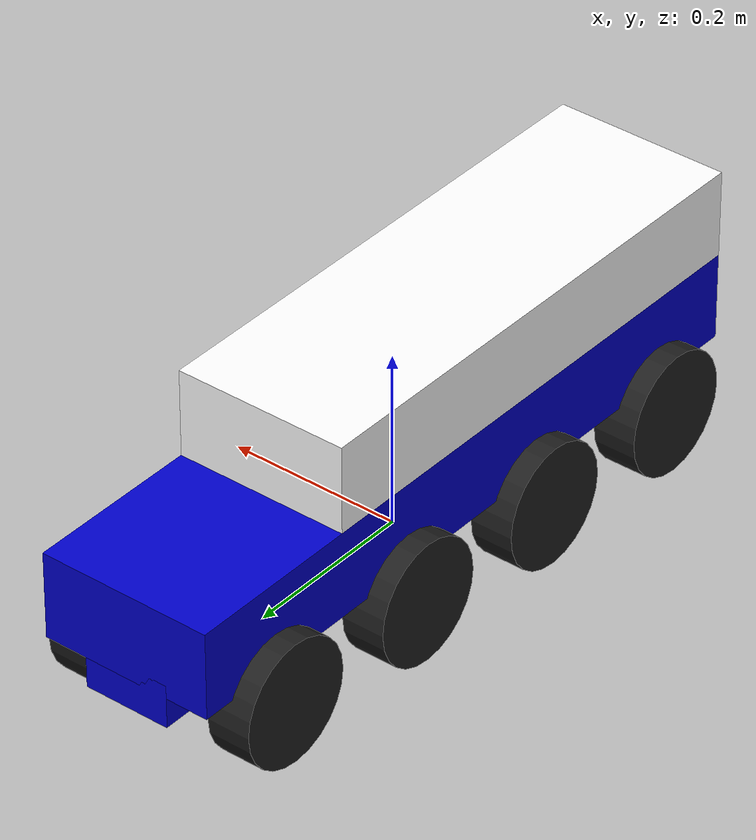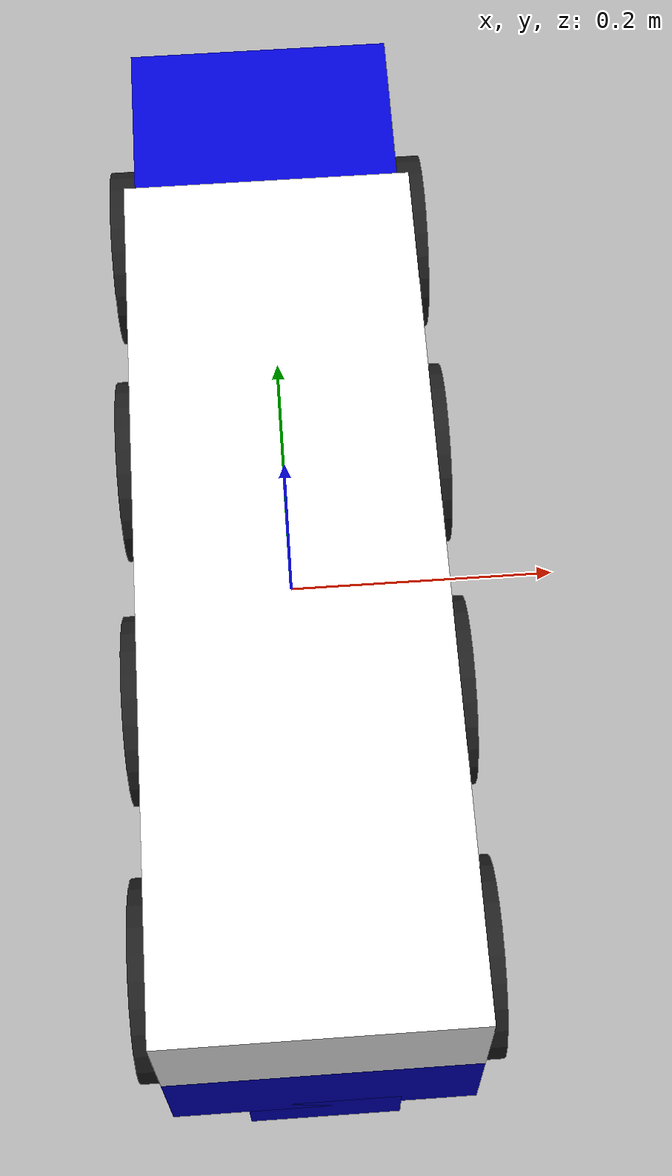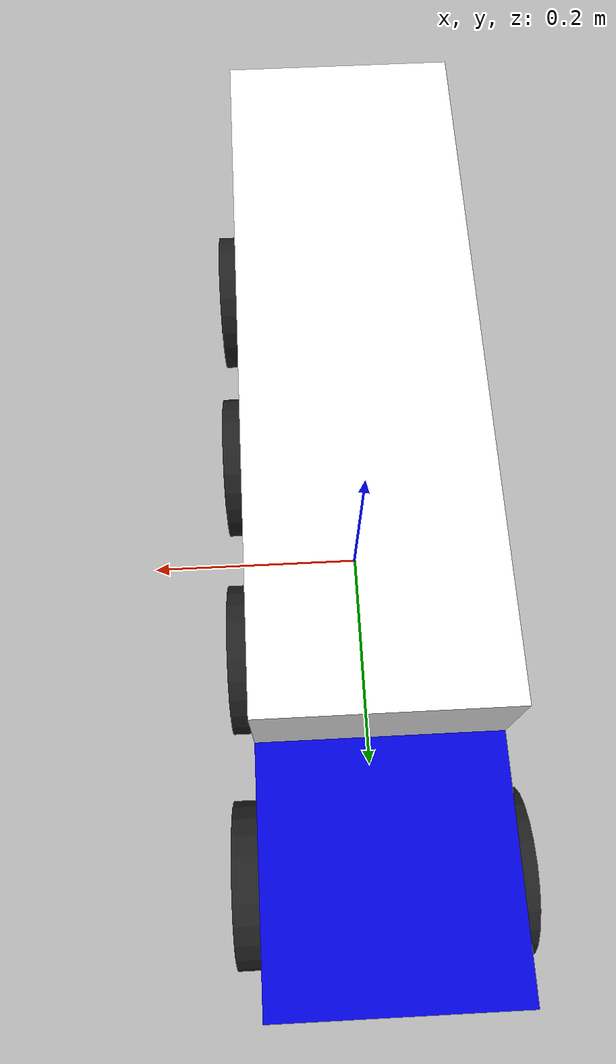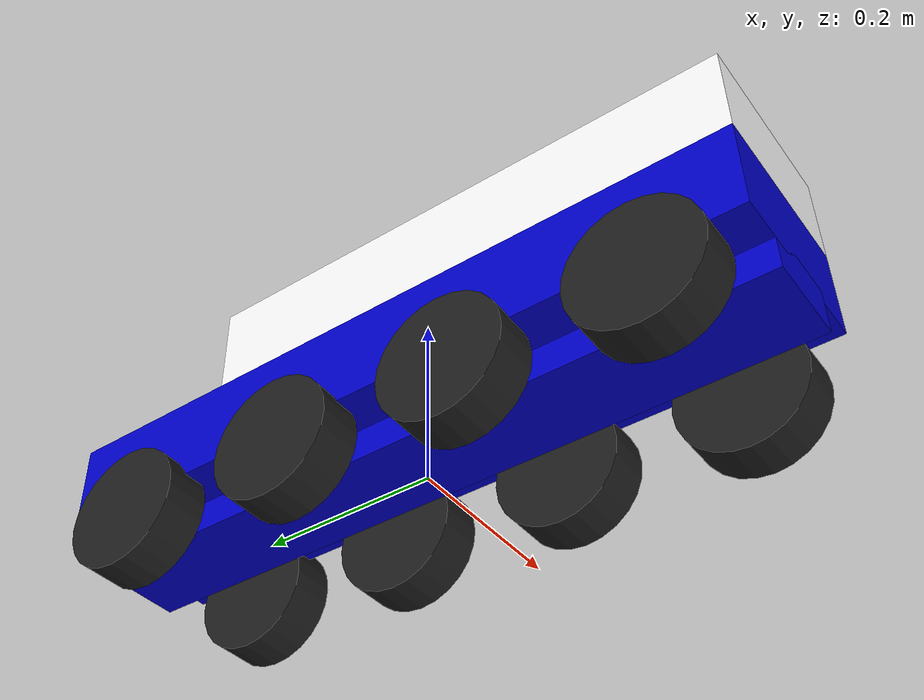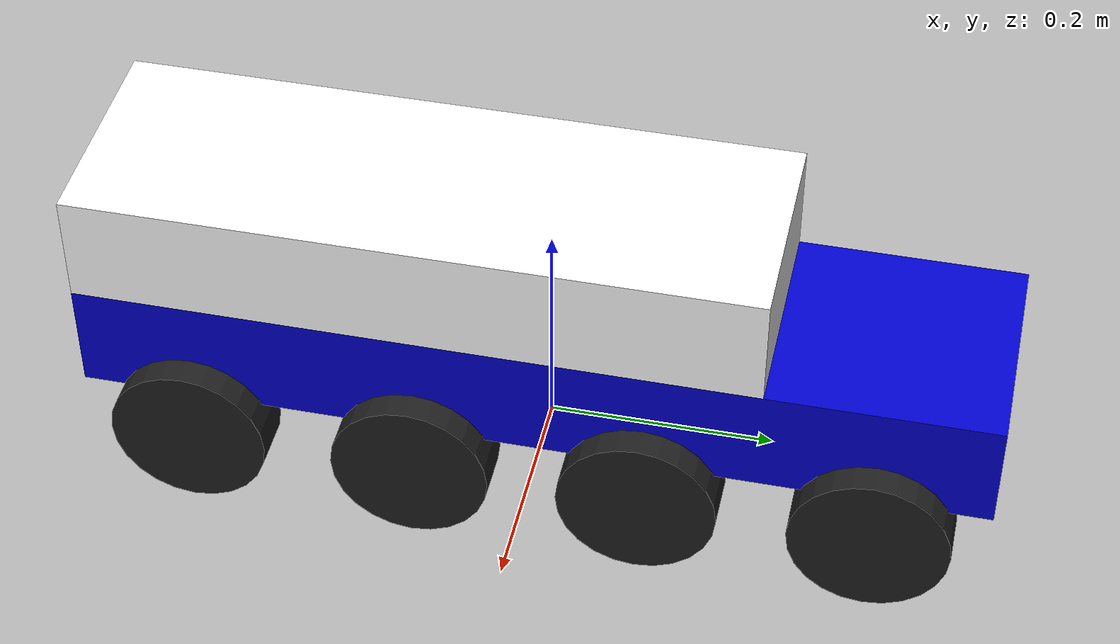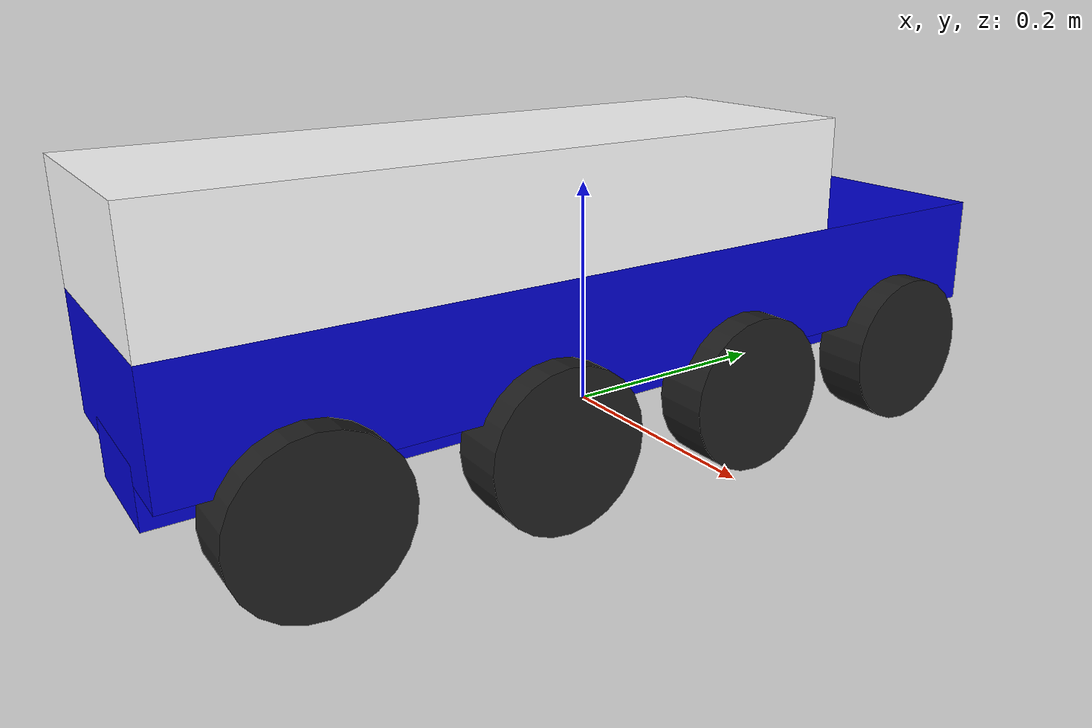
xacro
<?xml version="1.0"?>
<robot name="8x8" xmlns:xacro="http://www.ros.org/wiki/xacro">

<xacro:property name="wheelRadius" value="0.07"/>
<xacro:property name="wheelLength" value="0.05"/>
<xacro:property name="leftWheel" value="left_wheel"/>
<xacro:property name="rightWheel" value="right_wheel"/>

<xacro:macro name="wheel" params="side num reflect">
  <link name="${side}_${num}">
    <visual>
      <geometry>
        <cylinder length="${wheelLength}" radius="${wheelRadius}"/>
      </geometry>
      <material name="Black"/>
    </visual>
    <collision>
      <geometry>
         <cylinder length="${wheelLength}" radius="${wheelRadius}"/>
      </geometry>
    </collision>
    <inertial>
      <mass value = "1" />
      <inertia ixx="0.005391667" ixy="0.0" ixz="0.0" iyy="0.005391667" iyz="0.0" izz="0.245"/>
    </inertial>
</link>

  <joint name="${side}_${num}_joint" type="continuous">
    <axis xyz="0 0 1" />
    <limit effort="1000.0" lower="-0.5" upper="0.5" velocity="0.5"/>
    <parent link="base_link"/>
    <child link="${side}_${num}"/>
    <origin rpy="0 ${pi/2} 0" xyz="${0.1 * reflect} ${0.3 - (0.2 * num)} 0.02"/>
  </joint>
</xacro:macro>

<xacro:macro name="transmissions" params="num side">

    <transmission name="${side}_${num}_trans">
      <type>transmission_interface/SimpleTransmission</type>
      <actuator name="${side}_${num}_motor">
        <mechanicalReduction>1</mechanicalReduction>
      </actuator>
      <joint name="${side}_${num}_joint">
        <hardwareInterface>VelocityJointInterface</hardwareInterface>
      </joint>
    </transmission>

    <gazebo reference="${side}_${num}">
      <mu1 value="200.0"/>
      <mu2 value="100.0"/>
      <kp value="10000000.0" />
      <kd value="1.0" />
      <material>Gazebo/Grey</material>
    </gazebo>
</xacro:macro>

  <material name="blue">
    <color rgba="0 0 0.8 1"/>
  </material>

  <material name="white">
    <color rgba="1 1 1 1"/>
  </material>

 <material name="black">
    <color rgba="0 0 0 1"/>
  </material>

  <link name="base_link">
    <visual>
      <geometry>
        <box size="0.2 0.8 0.1"/>
      </geometry>
      <origin rpy="0 0 0" xyz="0 0 0.1"/>
      <material name = "blue"/>
    </visual>
    <collision>
      <geometry>
        <box size="0.2 0.8 0.1"/>
      </geometry>
    </collision>
    <inertial>
      <mass value = "10" />
      <inertia ixx="0.5667" ixy="0.0" ixz="0.0" iyy="0.5667" iyz="0.0" izz="0.0667"/>
    </inertial>
  </link>

<link name="topBox">
 <visual>
  <geometry>
    <box size="0.2 0.6 0.1"/>
  </geometry>
    <origin rpy="0 0 0" xyz="0 -0.3 0"/>
      <material name="white"/>
 </visual>
</link>

 <joint name="topBox_joint" type="fixed">
 <parent link="base_link"/>
 <child link="topBox"/>
 <origin xyz="0 0.2 0.2"/>
  </joint>

<link name="chassis">
 <visual>
  <geometry>
    <box size="0.1 0.8 0.05"/>
  </geometry>
    <origin rpy="0 0 0" xyz="0 0 0.04"/>
      <material name="blue"/>
 </visual>
</link>

 <joint name="chassis_joint" type="fixed">
 <parent link="base_link"/>
 <child link="chassis"/>
 <origin xyz="0 0 -0"/>
  </joint>

<xacro:wheel side="left_wheel" num="0" reflect="-1"/>
<xacro:wheel side="left_wheel" num="1" reflect="-1"/>
<xacro:wheel side="left_wheel" num="2" reflect="-1"/>
<xacro:wheel side="left_wheel" num="3" reflect="-1"/>
<xacro:wheel side="right_wheel" num="0" reflect="1"/>
<xacro:wheel side="right_wheel" num="1" reflect="1"/>
<xacro:wheel side="right_wheel" num="2" reflect="1"/>
<xacro:wheel side="right_wheel" num="3" reflect="1"/>

  <gazebo>
    <plugin name="gazebo_ros_control" filename="libgazebo_ros_control.so">
      <robotNamespace>/</robotNamespace>
    </plugin>
  </gazebo>

<xacro:transmissions side="left_wheel" num="0"/>
<xacro:transmissions side="left_wheel" num="1"/>
<xacro:transmissions side="left_wheel" num="2"/>
<xacro:transmissions side="left_wheel" num="3"/>
<xacro:transmissions side="right_wheel" num="0"/>
<xacro:transmissions side="right_wheel" num="1"/>
<xacro:transmissions side="right_wheel" num="2"/>
<xacro:transmissions side="right_wheel" num="3"/>

</robot>
